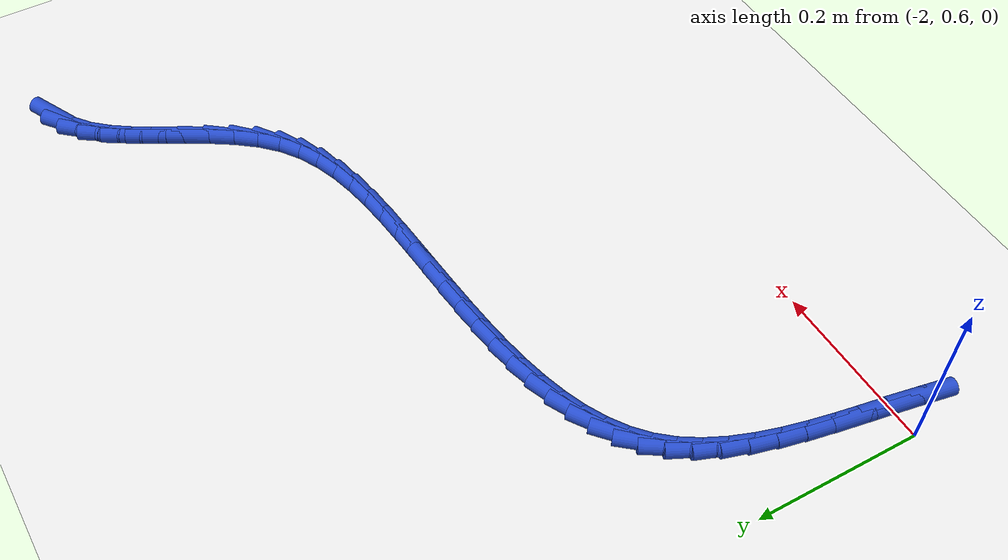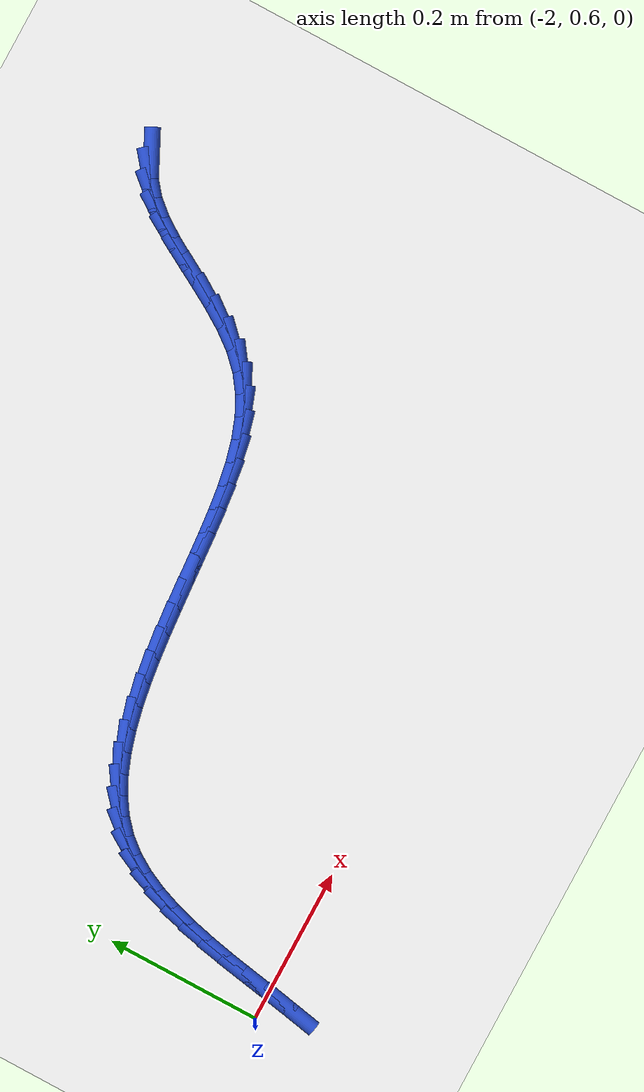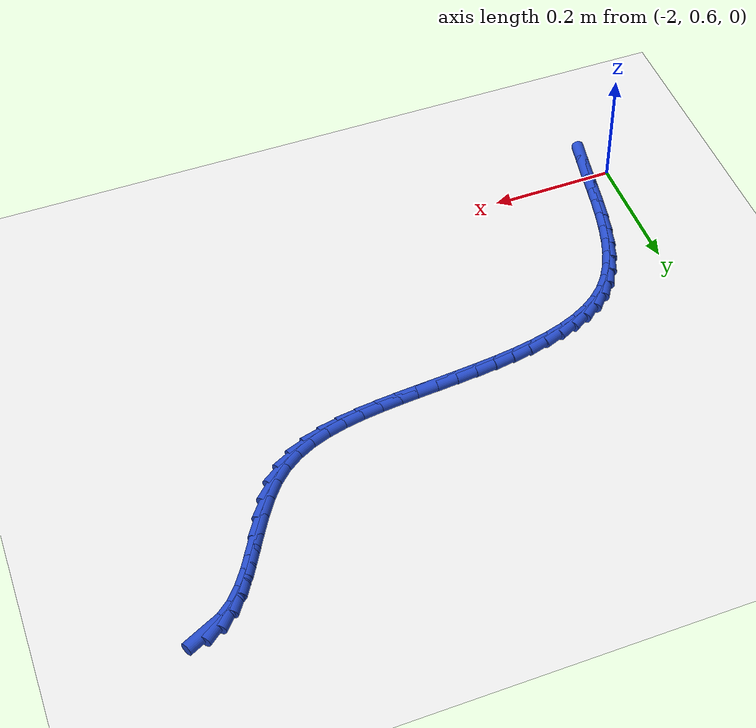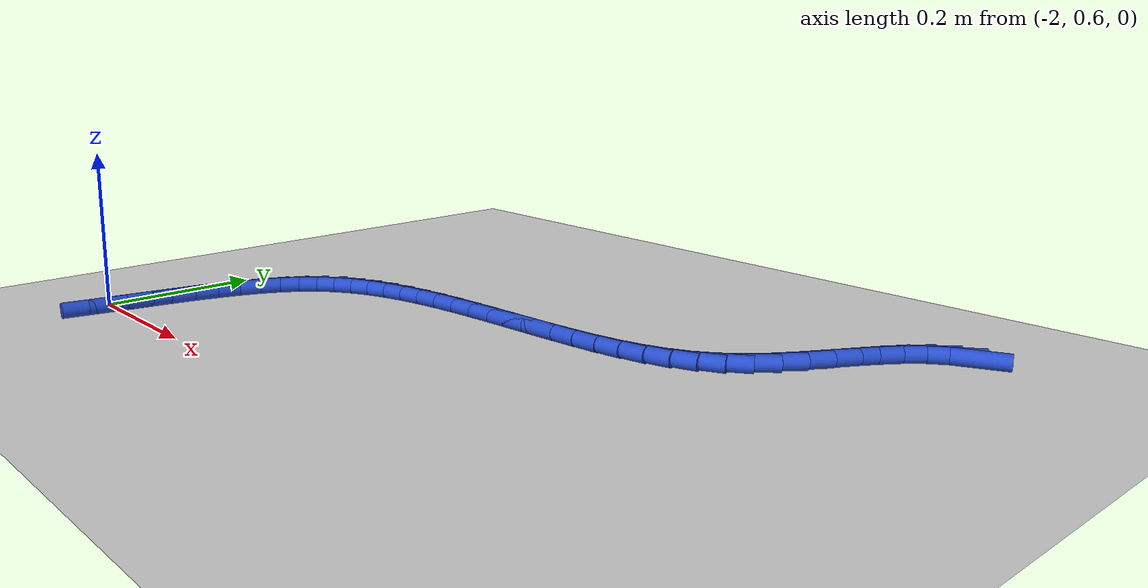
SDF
<sdf version="1.6">
 <world name="default">
  <model name="ground_plane">
   <static>1</static>
   <link name="link">
    <collision name="collision">
     <geometry><plane><normal>0 0 1</normal><size>100 100</size></plane></geometry>
     <surface><friction><ode><mu>100</mu><mu2>50</mu2></ode></friction></surface>
    </collision>
    <visual name="visual">
     <cast_shadows>0</cast_shadows>
     <geometry><plane><normal>0 0 1</normal><size>100 100</size></plane></geometry>
     <material>
      <script><uri>file://media/materials/scripts/gazebo.material</uri><name>Gazebo/WhiteGlow</name></script>
     </material>
    </visual>
   </link>
  </model>
  <model name="line">
   <link name="link_60">
    <pose>-1.1335115208255533 1.2125849089799772 0.01 0 1.57 0.45518498297352966</pose>
    <collision name="collision">
     <geometry><cylinder><radius>0.01</radius><length>0.08</length></cylinder></geometry>
    </collision>
    <visual name="visual">
     <material>
      <script><name>Gazebo/Blue</name><uri>file://media/materials/scripts/gazebo.material</uri></script>
     </material>
     <geometry><cylinder><radius>0.01</radius><length>0.08</length></cylinder></geometry>
    </visual>
   </link>
   <link name="link_61">
    <pose>-1.154975461885247 1.202079038779186 0.01 0 1.57 0.6783929036199875</pose>
    <collision name="collision">
     <geometry><cylinder><radius>0.01</radius><length>0.08</length></cylinder></geometry>
    </collision>
    <visual name="visual">
     <material>
      <script><name>Gazebo/Blue</name><uri>file://media/materials/scripts/gazebo.material</uri></script>
     </material>
     <geometry><cylinder><radius>0.01</radius><length>0.08</length></cylinder></geometry>
    </visual>
   </link>
   <link name="link_62">
    <pose>-1.174299023471863 1.1865041168821069 0.01 0 1.57 0.8586059670280725</pose>
    <collision name="collision">
     <geometry><cylinder><radius>0.01</radius><length>0.08</length></cylinder></geometry>
    </collision>
    <visual name="visual">
     <material>
      <script><name>Gazebo/Blue</name><uri>file://media/materials/scripts/gazebo.material</uri></script>
     </material>
     <geometry><cylinder><radius>0.01</radius><length>0.08</length></cylinder></geometry>
    </visual>
   </link>
   <link name="link_63">
    <pose>-1.1917201461635438 1.166325469646426 0.01 0 1.57 0.9729977720407559</pose>
    <collision name="collision">
     <geometry><cylinder><radius>0.01</radius><length>0.08</length></cylinder></geometry>
    </collision>
    <visual name="visual">
     <material>
      <script><name>Gazebo/Blue</name><uri>file://media/materials/scripts/gazebo.material</uri></script>
     </material>
     <geometry><cylinder><radius>0.01</radius><length>0.08</length></cylinder></geometry>
    </visual>
   </link>
   <link name="link_64">
    <pose>-1.20782138676357 1.1426788140996222 0.01 0 1.57 1.036142944541472</pose>
    <collision name="collision">
     <geometry><cylinder><radius>0.01</radius><length>0.08</length></cylinder></geometry>
    </collision>
    <visual name="visual">
     <material>
      <script><name>Gazebo/Blue</name><uri>file://media/materials/scripts/gazebo.material</uri></script>
     </material>
     <geometry><cylinder><radius>0.01</radius><length>0.08</length></cylinder></geometry>
    </visual>
   </link>
   <link name="link_65">
    <pose>-1.223194794719362 1.1167183335502058 0.01 0 1.57 1.058895613276001</pose>
    <collision name="collision">
     <geometry><cylinder><radius>0.01</radius><length>0.08</length></cylinder></geometry>
    </collision>
    <visual name="visual">
     <material>
      <script><name>Gazebo/Blue</name><uri>file://media/materials/scripts/gazebo.material</uri></script>
     </material>
     <geometry><cylinder><radius>0.01</radius><length>0.08</length></cylinder></geometry>
    </visual>
   </link>
   <link name="link_66">
    <pose>-1.2384324194783394 1.0895982113066878 0.01 0 1.57 1.0462875498071533</pose>
    <collision name="collision">
     <geometry><cylinder><radius>0.01</radius><length>0.08</length></cylinder></geometry>
    </collision>
    <visual name="visual">
     <material>
      <script><name>Gazebo/Blue</name><uri>file://media/materials/scripts/gazebo.material</uri></script>
     </material>
     <geometry><cylinder><radius>0.01</radius><length>0.08</length></cylinder></geometry>
    </visual>
   </link>
   <link name="link_67">
    <pose>-1.254126310487922 1.0624726306775802 0.01 0 1.57 0.9982939097079527</pose>
    <collision name="collision">
     <geometry><cylinder><radius>0.01</radius><length>0.08</length></cylinder></geometry>
    </collision>
    <visual name="visual">
     <material>
      <script><name>Gazebo/Blue</name><uri>file://media/materials/scripts/gazebo.material</uri></script>
     </material>
     <geometry><cylinder><radius>0.01</radius><length>0.08</length></cylinder></geometry>
    </visual>
   </link>
   <link name="link_68">
    <pose>-1.2708685171955292 1.036495774971394 0.01 0 1.57 0.910556349702019</pose>
    <collision name="collision">
     <geometry><cylinder><radius>0.01</radius><length>0.08</length></cylinder></geometry>
    </collision>
    <visual name="visual">
     <material>
      <script><name>Gazebo/Blue</name><uri>file://media/materials/scripts/gazebo.material</uri></script>
     </material>
     <geometry><cylinder><radius>0.01</radius><length>0.08</length></cylinder></geometry>
    </visual>
   </link>
   <link name="link_69">
    <pose>-1.2892510890485818 1.0128218274966403 0.01 0 1.57 0.776115957125846</pose>
    <collision name="collision">
     <geometry><cylinder><radius>0.01</radius><length>0.08</length></cylinder></geometry>
    </collision>
    <visual name="visual">
     <material>
      <script><name>Gazebo/Blue</name><uri>file://media/materials/scripts/gazebo.material</uri></script>
     </material>
     <geometry><cylinder><radius>0.01</radius><length>0.08</length></cylinder></geometry>
    </visual>
   </link>
   <link name="link_70">
    <pose>-1.3098594894146307 0.9925925022107727 0.01 0 1.57 0.614484283541485</pose>
    <collision name="collision">
     <geometry><cylinder><radius>0.01</radius><length>0.08</length></cylinder></geometry>
    </collision>
    <visual name="visual">
     <material>
      <script><name>Gazebo/Blue</name><uri>file://media/materials/scripts/gazebo.material</uri></script>
     </material>
     <geometry><cylinder><radius>0.01</radius><length>0.08</length></cylinder></geometry>
    </visual>
   </link>
   <link name="link_71">
    <pose>-1.3329396962462903 0.9763067691473565 0.01 0 1.57 0.46782374481326866</pose>
    <collision name="collision">
     <geometry><cylinder><radius>0.01</radius><length>0.08</length></cylinder></geometry>
    </collision>
    <visual name="visual">
     <material>
      <script><name>Gazebo/Blue</name><uri>file://media/materials/scripts/gazebo.material</uri></script>
     </material>
     <geometry><cylinder><radius>0.01</radius><length>0.08</length></cylinder></geometry>
    </visual>
   </link>
   <link name="link_72">
    <pose>-1.3582412241193096 0.963523649803511 0.01 0 1.57 0.3453031799460843</pose>
    <collision name="collision">
     <geometry><cylinder><radius>0.01</radius><length>0.08</length></cylinder></geometry>
    </collision>
    <visual name="visual">
     <material>
      <script><name>Gazebo/Blue</name><uri>file://media/materials/scripts/gazebo.material</uri></script>
     </material>
     <geometry><cylinder><radius>0.01</radius><length>0.08</length></cylinder></geometry>
    </visual>
   </link>
   <link name="link_73">
    <pose>-1.3854741772149084 0.9537275504189477 0.01 0 1.57 0.24843249446647223</pose>
    <collision name="collision">
     <geometry><cylinder><radius>0.01</radius><length>0.08</length></cylinder></geometry>
    </collision>
    <visual name="visual">
     <material>
      <script><name>Gazebo/Blue</name><uri>file://media/materials/scripts/gazebo.material</uri></script>
     </material>
     <geometry><cylinder><radius>0.01</radius><length>0.08</length></cylinder></geometry>
    </visual>
   </link>
   <link name="link_74">
    <pose>-1.4143486597143058 0.9464028772333779 0.01 0 1.57 0.17578917918295028</pose>
    <collision name="collision">
     <geometry><cylinder><radius>0.01</radius><length>0.08</length></cylinder></geometry>
    </collision>
    <visual name="visual">
     <material>
      <script><name>Gazebo/Blue</name><uri>file://media/materials/scripts/gazebo.material</uri></script>
     </material>
     <geometry><cylinder><radius>0.01</radius><length>0.08</length></cylinder></geometry>
    </visual>
   </link>
   <link name="link_75">
    <pose>-1.4445747757987222 0.9410340364865146 0.01 0 1.57 0.12490946053421849</pose>
    <collision name="collision">
     <geometry><cylinder><radius>0.01</radius><length>0.08</length></cylinder></geometry>
    </collision>
    <visual name="visual">
     <material>
      <script><name>Gazebo/Blue</name><uri>file://media/materials/scripts/gazebo.material</uri></script>
     </material>
     <geometry><cylinder><radius>0.01</radius><length>0.08</length></cylinder></geometry>
    </visual>
   </link>
   <link name="link_76">
    <pose>-1.4758626296493766 0.9371054344180683 0.01 0 1.57 0.09342088120840046</pose>
    <collision name="collision">
     <geometry><cylinder><radius>0.01</radius><length>0.08</length></cylinder></geometry>
    </collision>
    <visual name="visual">
     <material>
      <script><name>Gazebo/Blue</name><uri>file://media/materials/scripts/gazebo.material</uri></script>
     </material>
     <geometry><cylinder><radius>0.01</radius><length>0.08</length></cylinder></geometry>
    </visual>
   </link>
   <link name="link_77">
    <pose>-1.5079223515589133 0.9341016433676373 0.01 0 1.57 0.0774790722404659</pose>
    <collision name="collision">
     <geometry><cylinder><radius>0.01</radius><length>0.08</length></cylinder></geometry>
    </collision>
    <visual name="visual">
     <material>
      <script><name>Gazebo/Blue</name><uri>file://media/materials/scripts/gazebo.material</uri></script>
     </material>
     <geometry><cylinder><radius>0.01</radius><length>0.08</length></cylinder></geometry>
    </visual>
   </link>
   <link name="link_78">
    <pose>-1.5404746402181795 0.9315744633252308 0.01 0 1.57 0.07089624754328361</pose>
    <collision name="collision">
     <geometry><cylinder><radius>0.01</radius><length>0.08</length></cylinder></geometry>
    </collision>
    <visual name="visual">
     <material>
      <script><name>Gazebo/Blue</name><uri>file://media/materials/scripts/gazebo.material</uri></script>
     </material>
     <geometry><cylinder><radius>0.01</radius><length>0.08</length></cylinder></geometry>
    </visual>
   </link>
   <link name="link_79">
    <pose>-1.5732669214307036 0.9292457106781995 0.01 0 1.57 0.072531542731353</pose>
    <collision name="collision">
     <geometry><cylinder><radius>0.01</radius><length>0.08</length></cylinder></geometry>
    </collision>
    <visual name="visual">
     <material>
      <script><name>Gazebo/Blue</name><uri>file://media/materials/scripts/gazebo.material</uri></script>
     </material>
     <geometry><cylinder><radius>0.01</radius><length>0.08</length></cylinder></geometry>
    </visual>
   </link>
   <link name="link_80">
    <pose>-1.6060507815818263 0.9268636680895029 0.01 0 1.57 0.08242260884202636</pose>
    <collision name="collision">
     <geometry><cylinder><radius>0.01</radius><length>0.08</length></cylinder></geometry>
    </collision>
    <visual name="visual">
     <material>
      <script><name>Gazebo/Blue</name><uri>file://media/materials/scripts/gazebo.material</uri></script>
     </material>
     <geometry><cylinder><radius>0.01</radius><length>0.08</length></cylinder></geometry>
    </visual>
   </link>
   <link name="link_81">
    <pose>-1.638577807056889 0.9241766182221003 0.01 0 1.57 0.10095463972076346</pose>
    <collision name="collision">
     <geometry><cylinder><radius>0.01</radius><length>0.08</length></cylinder></geometry>
    </collision>
    <visual name="visual">
     <material>
      <script><name>Gazebo/Blue</name><uri>file://media/materials/scripts/gazebo.material</uri></script>
     </material>
     <geometry><cylinder><radius>0.01</radius><length>0.08</length></cylinder></geometry>
    </visual>
   </link>
   <link name="link_82">
    <pose>-1.6705995842412324 0.9209328437389512 0.01 0 1.57 0.1288775016717963</pose>
    <collision name="collision">
     <geometry><cylinder><radius>0.01</radius><length>0.08</length></cylinder></geometry>
    </collision>
    <visual name="visual">
     <material>
      <script><name>Gazebo/Blue</name><uri>file://media/materials/scripts/gazebo.material</uri></script>
     </material>
     <geometry><cylinder><radius>0.01</radius><length>0.08</length></cylinder></geometry>
    </visual>
   </link>
   <link name="link_83">
    <pose>-1.7018676995201973 0.9168806273030149 0.01 0 1.57 0.1673350465159405</pose>
    <collision name="collision">
     <geometry><cylinder><radius>0.01</radius><length>0.08</length></cylinder></geometry>
    </collision>
    <visual name="visual">
     <material>
      <script><name>Gazebo/Blue</name><uri>file://media/materials/scripts/gazebo.material</uri></script>
     </material>
     <geometry><cylinder><radius>0.01</radius><length>0.08</length></cylinder></geometry>
    </visual>
   </link>
   <link name="link_84">
    <pose>-1.7321337392791243 0.9117682515772504 0.01 0 1.57 0.21789216121772392</pose>
    <collision name="collision">
     <geometry><cylinder><radius>0.01</radius><length>0.08</length></cylinder></geometry>
    </collision>
    <visual name="visual">
     <material>
      <script><name>Gazebo/Blue</name><uri>file://media/materials/scripts/gazebo.material</uri></script>
     </material>
     <geometry><cylinder><radius>0.01</radius><length>0.08</length></cylinder></geometry>
    </visual>
   </link>
   <link name="link_85">
    <pose>-1.7611492899033552 0.9053439992246176 0.01 0 1.57 0.282526198151941</pose>
    <collision name="collision">
     <geometry><cylinder><radius>0.01</radius><length>0.08</length></cylinder></geometry>
    </collision>
    <visual name="visual">
     <material>
      <script><name>Gazebo/Blue</name><uri>file://media/materials/scripts/gazebo.material</uri></script>
     </material>
     <geometry><cylinder><radius>0.01</radius><length>0.08</length></cylinder></geometry>
    </visual>
   </link>
   <link name="link_86">
    <pose>-1.7886659377782304 0.8973561529080758 0.01 0 1.57 0.3635135742672702</pose>
    <collision name="collision">
     <geometry><cylinder><radius>0.01</radius><length>0.08</length></cylinder></geometry>
    </collision>
    <visual name="visual">
     <material>
      <script><name>Gazebo/Blue</name><uri>file://media/materials/scripts/gazebo.material</uri></script>
     </material>
     <geometry><cylinder><radius>0.01</radius><length>0.08</length></cylinder></geometry>
    </visual>
   </link>
   <link name="link_87">
    <pose>-1.8144352692890902 0.8875529952905842 0.01 0 1.57 0.46308836164682277</pose>
    <collision name="collision">
     <geometry><cylinder><radius>0.01</radius><length>0.08</length></cylinder></geometry>
    </collision>
    <visual name="visual">
     <material>
      <script><name>Gazebo/Blue</name><uri>file://media/materials/scripts/gazebo.material</uri></script>
     </material>
     <geometry><cylinder><radius>0.01</radius><length>0.08</length></cylinder></geometry>
    </visual>
   </link>
   <link name="link_88">
    <pose>-1.8382088708212763 0.8756828090351021 0.01 0 1.57 0.5827091271335978</pose>
    <collision name="collision">
     <geometry><cylinder><radius>0.01</radius><length>0.08</length></cylinder></geometry>
    </collision>
    <visual name="visual">
     <material>
      <script><name>Gazebo/Blue</name><uri>file://media/materials/scripts/gazebo.material</uri></script>
     </material>
     <geometry><cylinder><radius>0.01</radius><length>0.08</length></cylinder></geometry>
    </visual>
   </link>
   <link name="link_89">
    <pose>-1.8597383287601295 0.8614938768045887 0.01 0 1.57 0.7218597602843113</pose>
    <collision name="collision">
     <geometry><cylinder><radius>0.01</radius><length>0.08</length></cylinder></geometry>
    </collision>
    <visual name="visual">
     <material>
      <script><name>Gazebo/Blue</name><uri>file://media/materials/scripts/gazebo.material</uri></script>
     </material>
     <geometry><cylinder><radius>0.01</radius><length>0.08</length></cylinder></geometry>
    </visual>
   </link>
   <link name="link_90">
    <pose>-1.8787752294909905 0.8447344812620041 0.01 0 1.57 0.8735054032322773</pose>
    <collision name="collision">
     <geometry><cylinder><radius>0.01</radius><length>0.08</length></cylinder></geometry>
    </collision>
    <visual name="visual">
     <material>
      <script><name>Gazebo/Blue</name><uri>file://media/materials/scripts/gazebo.material</uri></script>
     </material>
     <geometry><cylinder><radius>0.01</radius><length>0.08</length></cylinder></geometry>
    </visual>
   </link>
   <link name="link_91">
    <pose>-1.8951300468692 0.8252102548683203 0.01 0 1.57 1.0113142916919131</pose>
    <collision name="collision">
     <geometry><cylinder><radius>0.01</radius><length>0.08</length></cylinder></geometry>
    </collision>
    <visual name="visual">
     <material>
      <script><name>Gazebo/Blue</name><uri>file://media/materials/scripts/gazebo.material</uri></script>
     </material>
     <geometry><cylinder><radius>0.01</radius><length>0.08</length></cylinder></geometry>
    </visual>
   </link>
   <link name="link_92">
    <pose>-1.9089838093368618 0.8030877087349865 0.01 0 1.57 1.1246544101709246</pose>
    <collision name="collision">
     <geometry><cylinder><radius>0.01</radius><length>0.08</length></cylinder></geometry>
    </collision>
    <visual name="visual">
     <material>
      <script><name>Gazebo/Blue</name><uri>file://media/materials/scripts/gazebo.material</uri></script>
     </material>
     <geometry><cylinder><radius>0.01</radius><length>0.08</length></cylinder></geometry>
    </visual>
   </link>
   <link name="link_93">
    <pose>-1.9206613207601075 0.7786733751278223 0.01 0 1.57 1.2144637738249506</pose>
    <collision name="collision">
     <geometry><cylinder><radius>0.01</radius><length>0.08</length></cylinder></geometry>
    </collision>
    <visual name="visual">
     <material>
      <script><name>Gazebo/Blue</name><uri>file://media/materials/scripts/gazebo.material</uri></script>
     </material>
     <geometry><cylinder><radius>0.01</radius><length>0.08</length></cylinder></geometry>
    </visual>
   </link>
   <link name="link_94">
    <pose>-1.93048770193295 0.7522740949648938 0.01 0 1.57 1.2833582899255518</pose>
    <collision name="collision">
     <geometry><cylinder><radius>0.01</radius><length>0.08</length></cylinder></geometry>
    </collision>
    <visual name="visual">
     <material>
      <script><name>Gazebo/Blue</name><uri>file://media/materials/scripts/gazebo.material</uri></script>
     </material>
     <geometry><cylinder><radius>0.01</radius><length>0.08</length></cylinder></geometry>
    </visual>
   </link>
   <link name="link_95">
    <pose>-1.9387880736494003 0.7241967091642652 0.01 0 1.57 1.33423034001856</pose>
    <collision name="collision">
     <geometry><cylinder><radius>0.01</radius><length>0.08</length></cylinder></geometry>
    </collision>
    <visual name="visual">
     <material>
      <script><name>Gazebo/Blue</name><uri>file://media/materials/scripts/gazebo.material</uri></script>
     </material>
     <geometry><cylinder><radius>0.01</radius><length>0.08</length></cylinder></geometry>
    </visual>
   </link>
   <link name="link_96">
    <pose>-1.9458875567034684 0.6947480586440002 0.01 0 1.57 1.369587540960355</pose>
    <collision name="collision">
     <geometry><cylinder><radius>0.01</radius><length>0.08</length></cylinder></geometry>
    </collision>
    <visual name="visual">
     <material>
      <script><name>Gazebo/Blue</name><uri>file://media/materials/scripts/gazebo.material</uri></script>
     </material>
     <geometry><cylinder><radius>0.01</radius><length>0.08</length></cylinder></geometry>
    </visual>
   </link>
   <link name="link_97">
    <pose>-1.9521112718891662 0.6642349843221648 0.01 0 1.57 1.3913299818941307</pose>
    <collision name="collision">
     <geometry><cylinder><radius>0.01</radius><length>0.08</length></cylinder></geometry>
    </collision>
    <visual name="visual">
     <material>
      <script><name>Gazebo/Blue</name><uri>file://media/materials/scripts/gazebo.material</uri></script>
     </material>
     <geometry><cylinder><radius>0.01</radius><length>0.08</length></cylinder></geometry>
    </visual>
   </link>
   <link name="link_98">
    <pose>-1.9577843400005048 0.6329643271168229 0.01 0 1.57 1.400724449709345</pose>
    <collision name="collision">
     <geometry><cylinder><radius>0.01</radius><length>0.08</length></cylinder></geometry>
    </collision>
    <visual name="visual">
     <material>
      <script><name>Gazebo/Blue</name><uri>file://media/materials/scripts/gazebo.material</uri></script>
     </material>
     <geometry><cylinder><radius>0.01</radius><length>0.08</length></cylinder></geometry>
    </visual>
   </link>
   <link name="link_99">
    <pose>-1.9632318818314958 0.6012429279460392 0.01 0 1.57 1.3984427038915161</pose>
    <collision name="collision">
     <geometry><cylinder><radius>0.01</radius><length>0.08</length></cylinder></geometry>
    </collision>
    <visual name="visual">
     <material>
      <script><name>Gazebo/Blue</name><uri>file://media/materials/scripts/gazebo.material</uri></script>
     </material>
     <geometry><cylinder><radius>0.01</radius><length>0.08</length></cylinder></geometry>
    </visual>
   </link>
   <link name="link_100">
    <pose>-1.96877901817615 0.569377627727878 0.01 0 1.57 1.3846115152825513</pose>
    <collision name="collision">
     <geometry><cylinder><radius>0.01</radius><length>0.08</length></cylinder></geometry>
    </collision>
    <visual name="visual">
     <material>
      <script><name>Gazebo/Blue</name><uri>file://media/materials/scripts/gazebo.material</uri></script>
     </material>
     <geometry><cylinder><radius>0.01</radius><length>0.08</length></cylinder></geometry>
    </visual>
   </link>
  </model>
 </world>
</sdf>
